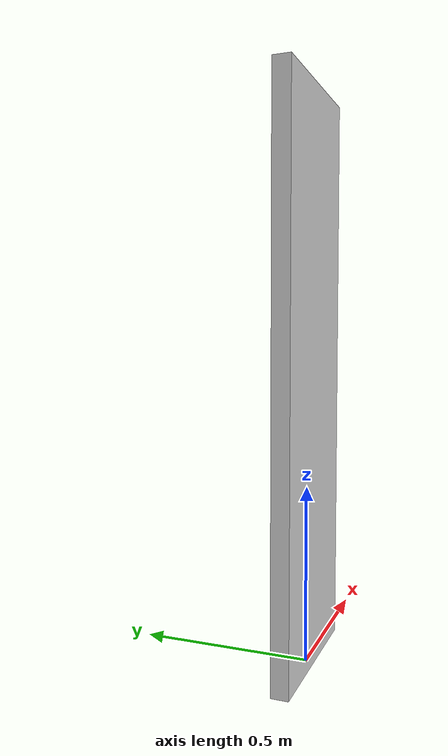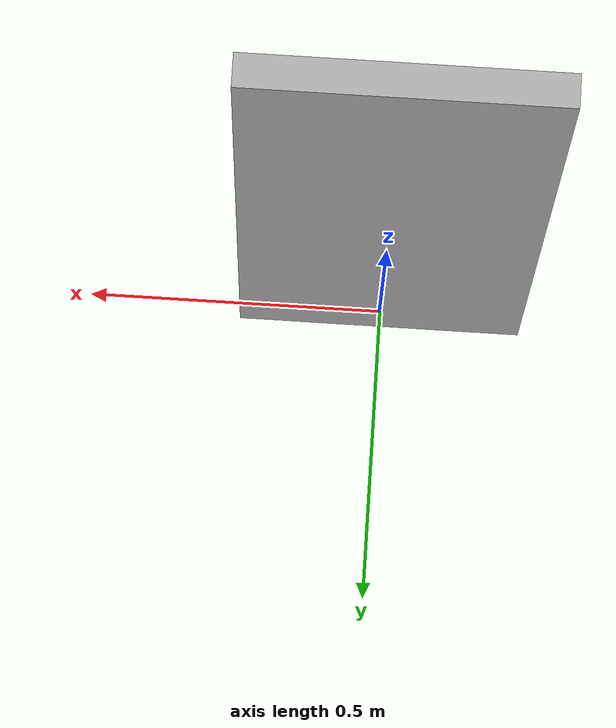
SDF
<?xml version="1.0" ?>
<sdf version="1.6">
  <model name="person_senior_1">
    <static>true</static>
    <link name="link">
      <gravity>false</gravity>
      <pose>0 0 0.8 0 0 0</pose>
      <visual name="visual">
        <geometry><box><size>0.48 0.05 1.6</size></box></geometry>
        <material>
          <script>
            <uri>model://person_senior_1/materials/scripts</uri>
            <uri>model://person_senior_1/materials/textures</uri>
            <name>PersonSenior1/Diffuse</name>
          </script>
        </material>
      </visual>
    </link>
  </model>
</sdf>
